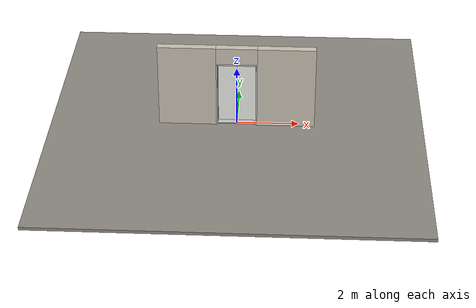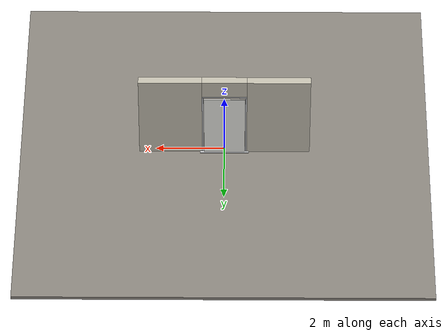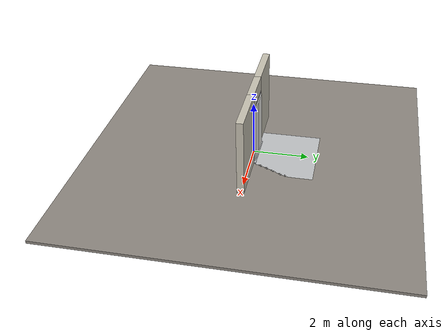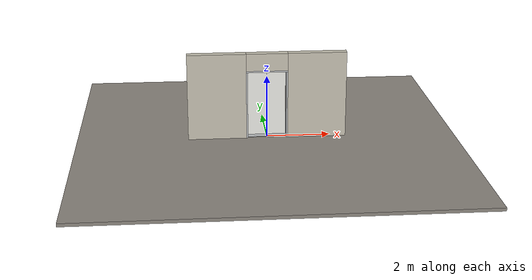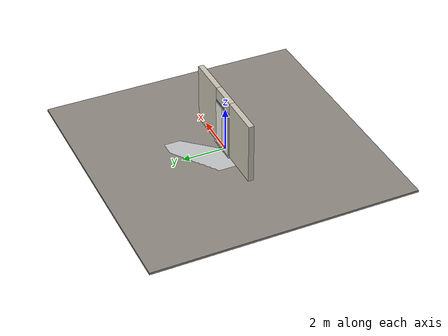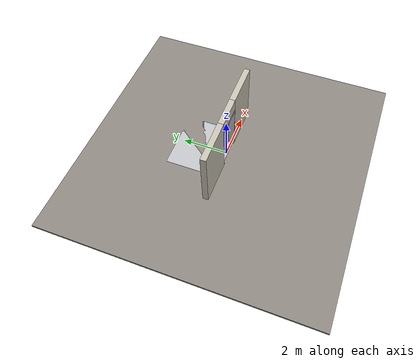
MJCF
<?xml version="1.0" ?>
<mujoco model="db0405_elevator_minimal">
  <compiler angle="radian" meshdir="../../hardware" texturedir="../../textures" autolimits="true" inertiafromgeom="false"/>
  <option timestep="0.002" integrator="implicitfast" cone="elliptic" impratio="10" noslip_iterations="3">
    <flag multiccd="enable"/>
  </option>
  <size memory="16M"/>
  <default>
    <geom condim="4" solref="0.005 1" solimp="0.95 0.99 0.001"/>
    <joint solreflimit="0.005 1" solimplimit="0.95 0.99 0.001"/>
    <tendon solreflimit="0.005 1"/>
    <equality solref="0.002 1"/>
  </default>
  <visual>
    <headlight ambient="0.4 0.4 0.4" diffuse="0.7 0.7 0.7" specular="0.2 0.2 0.2"/>
    <quality shadowsize="4096"/>
    <map znear="0.01" zfar="60"/>
  </visual>
  <asset>
    <material name="mat_floor" rgba="0.55 0.53 0.5 1" specular="0.2" shininess="0.15" reflectance="0"/>
    <material name="mat_wall" rgba="0.78 0.76 0.7 1" specular="0.2" shininess="0.1" reflectance="0"/>
    <material name="mat_frame" rgba="0.75 0.76 0.77 1" specular="0.8" shininess="0.65" reflectance="0.4"/>
    <material name="mat_track" rgba="0.8 0.81 0.83 1" specular="0.8" shininess="0.6" reflectance="0.4"/>
    <material name="mat_leaf_a" rgba="0.93 0.93 0.91 1" specular="0.23" shininess="0.47" reflectance="0.02"/>
    <material name="mat_roller" rgba="0.65 0.66 0.68 1" specular="0.74" shininess="0.5" reflectance="0.36"/>
    <material name="mat_leaf_b" rgba="0.93 0.93 0.91 1" specular="0.23" shininess="0.47" reflectance="0.02"/>
    <material name="mat_sill" rgba="0.75 0.76 0.77 1" specular="0.8" shininess="0.65" reflectance="0.4"/>
    <material name="mat_wallreader" rgba="0.05 0.05 0.05 1" specular="0.38" shininess="0.3" reflectance="0.12"/>
    <material name="mat_callbtn" rgba="0.9 0.9 0.9 1" specular="0.68" shininess="0.7" reflectance="0.32"/>
    <material name="mat_hook" rgba="0.75 0.76 0.77 1" specular="0.8" shininess="0.65" reflectance="0.4"/>
    <texture name="skybox" type="skybox" builtin="gradient" rgb1="0.6 0.7 0.85" rgb2="0.9 0.92 0.95" width="256" height="256"/>
  </asset>
  <worldbody>
    <light name="sun" pos="1.5 -2.5 4" dir="-0.3 0.5 -0.8" directional="true" diffuse="0.8 0.8 0.8" specular="0.3 0.3 0.3" castshadow="true"/>
    <light name="fill" pos="-1.5 2.5 3" dir="0.3 -0.5 -0.7" directional="true" diffuse="0.35 0.35 0.4" castshadow="false"/>
    <camera name="robot_view" pos="0 -2.65 1.822" xyaxes="1 0 0 0 0.26963 0.962964" fovy="52"/>
    <camera name="far_view" pos="0 2.65 1.822" xyaxes="-1 0 0 0 -0.26963 0.962964" fovy="52"/>
    <camera name="iso" pos="2.014 -2.226 2.246" xyaxes="0.741536 0.670913 0 -0.242917 0.268487 0.932151" fovy="46"/>
    <camera name="detail_handle" pos="0.48 -0.8 1.28" xyaxes="0.97561 0.219512 0 -0.070934 0.315262 0.94635" fovy="38"/>
    <geom name="floor" type="box" size="6 6 0.05" pos="0 0 -0.05" material="mat_floor" group="0" contype="1" conaffinity="1" friction="0.8 0.005 0.0001" density="2400"/>
    <geom name="wall_left" type="box" size="0.9225 0.125 1.38" pos="-1.5775 0 1.38" material="mat_wall" group="0" contype="1" conaffinity="1" friction="0.6 0.005 0.0001" density="800"/>
    <geom name="wall_right" type="box" size="0.9225 0.125 1.38" pos="1.5775 0 1.38" material="mat_wall" group="0" contype="1" conaffinity="1" friction="0.6 0.005 0.0001" density="800"/>
    <geom name="wall_header" type="box" size="0.655 0.125 0.2775" pos="0 0 2.4825" material="mat_wall" group="0" contype="1" conaffinity="1" friction="0.6 0.005 0.0001" density="800"/>
    <geom name="jamb_l" type="box" size="0.0225 0.125 1.08" pos="-0.6325 0 1.08" material="mat_frame" group="0" contype="1" conaffinity="1" friction="0.6 0.005 0.0001" density="300"/>
    <geom name="jamb_r" type="box" size="0.0225 0.125 1.08" pos="0.6325 0 1.08" material="mat_frame" group="0" contype="1" conaffinity="1" friction="0.6 0.005 0.0001" density="300"/>
    <geom name="jamb_head" type="box" size="0.655 0.125 0.0225" pos="0 0 2.1825" material="mat_frame" group="0" contype="1" conaffinity="1" friction="0.6 0.005 0.0001" density="300"/>
    <geom name="sill" type="box" size="0.71 0.1285 0.01" pos="0 0.0685 0.01" material="mat_sill" group="0" contype="1" conaffinity="1" friction="0.6 0.005 0.0001" density="7900"/>
    <geom name="car_floor" type="box" size="1.32 1.1 0.01" pos="0 1.2 -0.01" material="mat_sill" group="0" contype="1" conaffinity="1" friction="0.6 0.005 0.0001" density="7900"/>
    <site name="approach_point" pos="0 -1.5 0" quat="1 0 0 0" size="0.05" rgba="0.2 0.9 0.2 0.5" group="4"/>
    <site name="goal_point" pos="0 1.5 0" quat="1 0 0 0" size="0.05" rgba="0.2 0.9 0.2 0.5" group="4"/>
    <site name="door_plane_center" pos="0 0 1.08" quat="1 0 0 0" size="0.02" rgba="0.2 0.9 0.2 0.5" group="4"/>
    <body name="leaf_a" pos="-0.3 0.152 0">
      <inertial pos="0 0 1.08" mass="38.019879" quat="-0.5 0.5 0.5 0.5" diaginertia="1.143447874 13.97515718 15.112902071"/>
      <joint name="leaf_a_slide" type="slide" axis="-1 0 0" limited="true" range="0 0.59" damping="3.9311" frictionloss="7.575049" armature="0.5"/>
      <geom name="leaf_a_slab" type="box" size="0.3 0.015 1.05" pos="0 0 1.08" material="mat_leaf_a" group="0" contype="1" conaffinity="1" friction="0.35 0.005 0.0001" density="1"/>
      <site name="leaf_a_edge_mid" pos="0.3 0 1.08" quat="1 0 0 0" size="0.02" rgba="0.2 0.9 0.2 0.5" group="4"/>
    </body>
    <body name="leaf_b" pos="0.3 0.152 0">
      <inertial pos="0 0 1.08" mass="38.019879" quat="-0.5 0.5 0.5 0.5" diaginertia="1.143447874 13.97515718 15.112902071"/>
      <joint name="leaf_b_slide" type="slide" axis="1 0 0" limited="true" range="0 0.59" damping="3.9311" frictionloss="7.575049" armature="0.5"/>
      <geom name="leaf_b_slab" type="box" size="0.3 0.015 1.05" pos="0 0 1.08" material="mat_leaf_b" group="0" contype="1" conaffinity="1" friction="0.35 0.005 0.0001" density="1"/>
      <site name="leaf_b_edge_mid" pos="-0.3 0 1.08" quat="1 0 0 0" size="0.02" rgba="0.2 0.9 0.2 0.5" group="4"/>
    </body>
  </worldbody>
  <equality>
    <weld name="leaf_a_interlock_hold" body1="leaf_a" body2="world" active="true"/>
    <weld name="leaf_b_interlock_hold" body1="leaf_b" body2="world" active="true"/>
    <joint name="center_couple" joint1="leaf_b_slide" joint2="leaf_a_slide" polycoef="0 1 0 0 0" active="true"/>
  </equality>
  <actuator>
    <position name="leaf_a_drive" joint="leaf_a_slide" kp="400" kv="60" forcerange="-135 135" ctrlrange="0 0.59"/>
    <position name="leaf_b_drive" joint="leaf_b_slide" kp="400" kv="60" forcerange="-135 135" ctrlrange="0 0.59"/>
  </actuator>
  <sensor>
    <jointpos name="leaf_a_slide_pos" joint="leaf_a_slide"/>
    <jointvel name="leaf_a_slide_vel" joint="leaf_a_slide"/>
    <jointpos name="leaf_b_slide_pos" joint="leaf_b_slide"/>
    <jointvel name="leaf_b_slide_vel" joint="leaf_b_slide"/>
  </sensor>
</mujoco>
